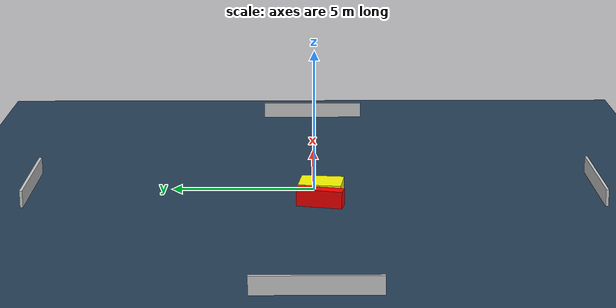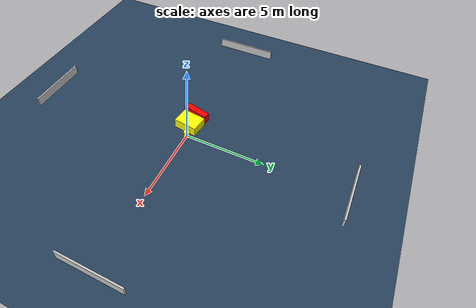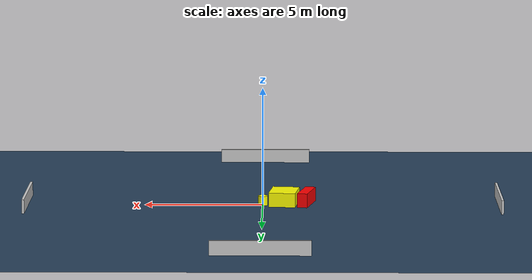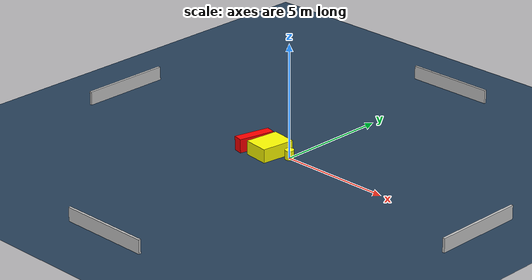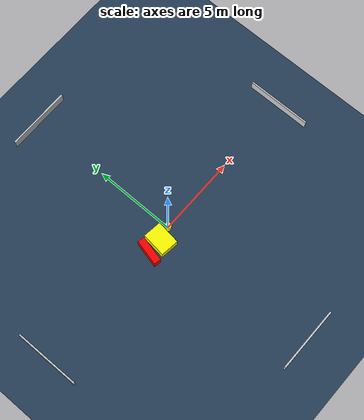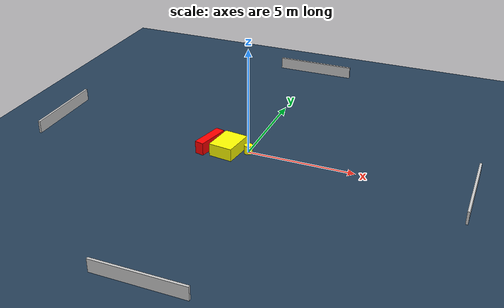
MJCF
<?xml version="1.0" ?>
<mujoco model="generated_environment">
  <option timestep="0.01" integrator="RK4" cone="elliptic"/>
  <default>
    <geom density="1"/>
  </default>
  <asset>
    <texture builtin="gradient" height="3072" name="skybox" rgb1="0.3 0.5 0.7" rgb2="0 0 0" type="skybox" width="512"/>
    <texture builtin="checker" height="300" name="groundplane" rgb1="0.2 0.3 0.4" rgb2="0.1 0.2 0.3" type="2d" width="300"/>
    <material name="groundplane" reflectance="0.2" texrepeat="5 5" texture="groundplane"/>
  </asset>
  <worldbody>
    <light dir="0 0 -1" directional="true" pos="0 0 1.5"/>
    <geom condim="3" friction="0.5 0.005 0.001" material="groundplane" name="floor" pos="0 0 0" size="0 0 0.05" type="plane"/>
    <body name="walls">
      <geom name="wall_1" condim="4" pos="-10.0 0.0 0.3" rgba="0.800000011920929 0.800000011920929 0.800000011920929 1.0" size="0.05 2.0 0.3" type="box"/>
      <geom name="wall_2" condim="4" pos="10.0 0.0 0.3" rgba="0.800000011920929 0.800000011920929 0.800000011920929 1.0" size="0.05 2.0 0.3" type="box"/>
      <geom name="wall_3" condim="4" pos="0.0 -10.0 0.3" rgba="0.800000011920929 0.800000011920929 0.800000011920929 1.0" size="2.0 0.05 0.3" type="box"/>
      <geom name="wall_4" condim="4" pos="0.0 10.0 0.3" rgba="0.800000011920929 0.800000011920929 0.800000011920929 1.0" size="2.0 0.05 0.3" type="box"/>
    </body>
    <body name="robot">
      <joint name="joint_x" type="slide" pos="0 0 0" axis="1 0 0"/>
      <joint name="joint_y" type="slide" pos="0 0 0" axis="0 1 0"/>
      <geom name="robot" type="cylinder" pos="0.0 0.0 0.2" size="0.2 0.2 0.0" mass="5.0" friction="1.0 0.005 0.0001" condim="4" rgba="1.0 1.0 0.0 1.0"/>
    </body>
    <body name="obstacle_1_movable">
      <geom name="obstacle_1_movable" condim="4" pos="-0.8887908638194393 -0.2360319051110452 0.3" euler="0 0 262.75114355057167" friction="0.0 0.005 0.001" rgba="1.0 1.0 0.0 1.0" size="0.7438556369322749 0.5664661110647692 0.3" type="box" mass="0.1"/>
      <joint type="free"/>
    </body>
    <body name="obstacle_2_static">
      <geom name="obstacle_2_static" condim="4" pos="-1.840002723029365 -0.19689637305957633 0.3" euler="0 0 166.71056320045113" friction="0.0 0.005 0.001" rgba="1.0 0.0 0.0 1.0" size="0.2156292409716627 0.7975978087228373 0.3" type="box"/>
    </body>
  </worldbody>
  <actuator>
    <motor name="actuator_x" joint="joint_x" gear="1" ctrlrange="-1 1"/>
    <motor name="actuator_y" joint="joint_y" gear="1" ctrlrange="-1 1"/>
  </actuator>
</mujoco>
